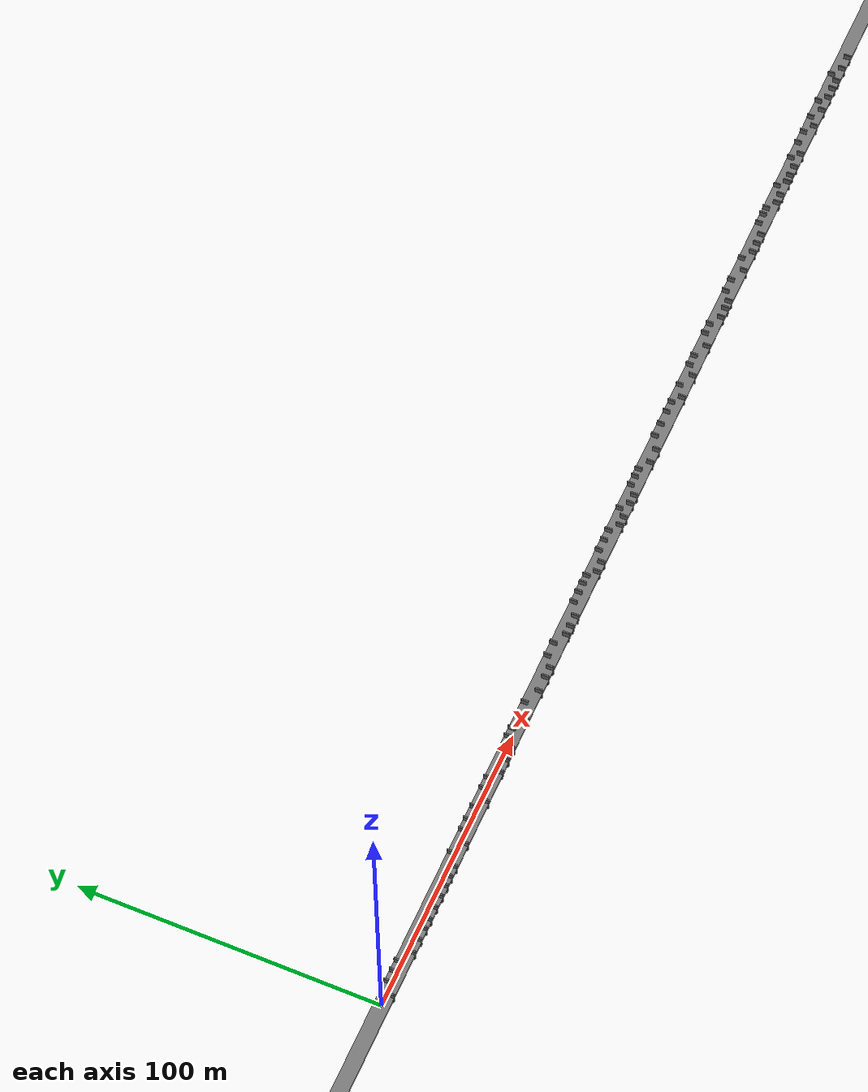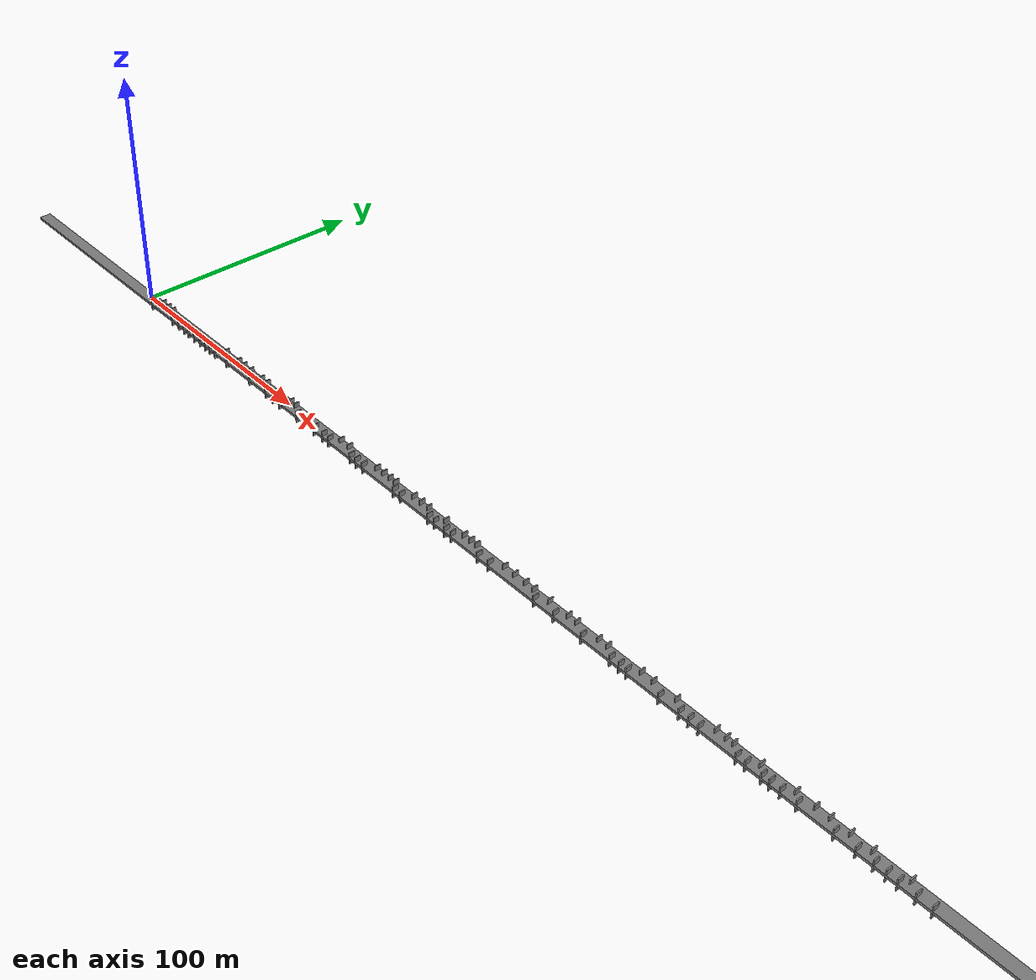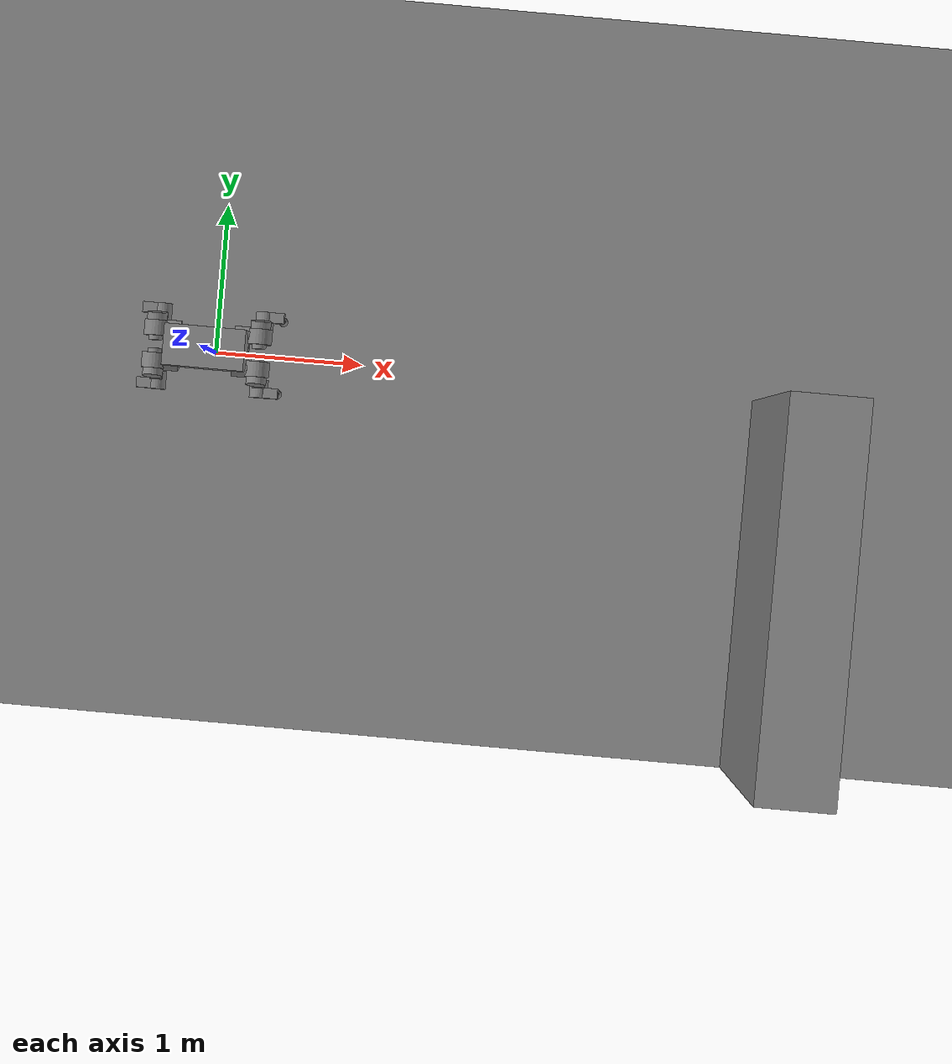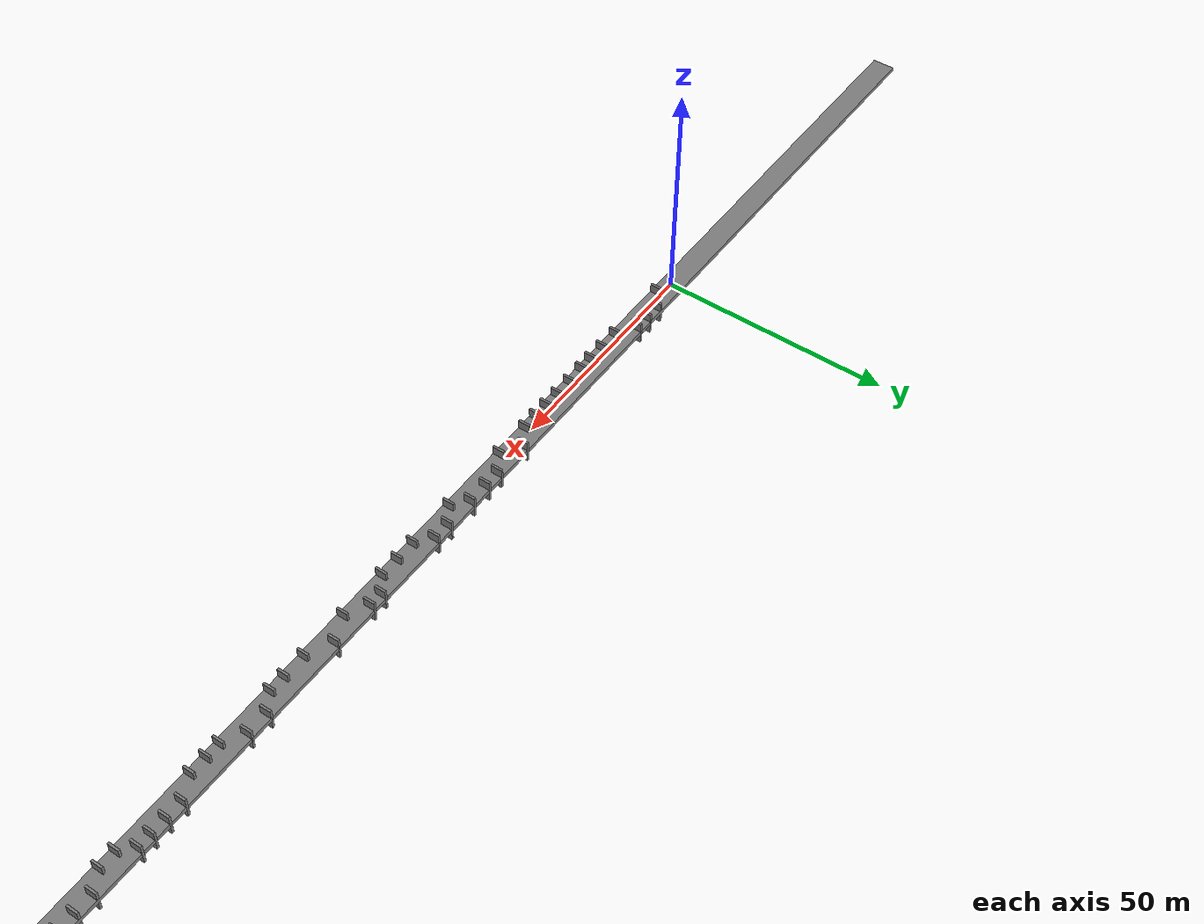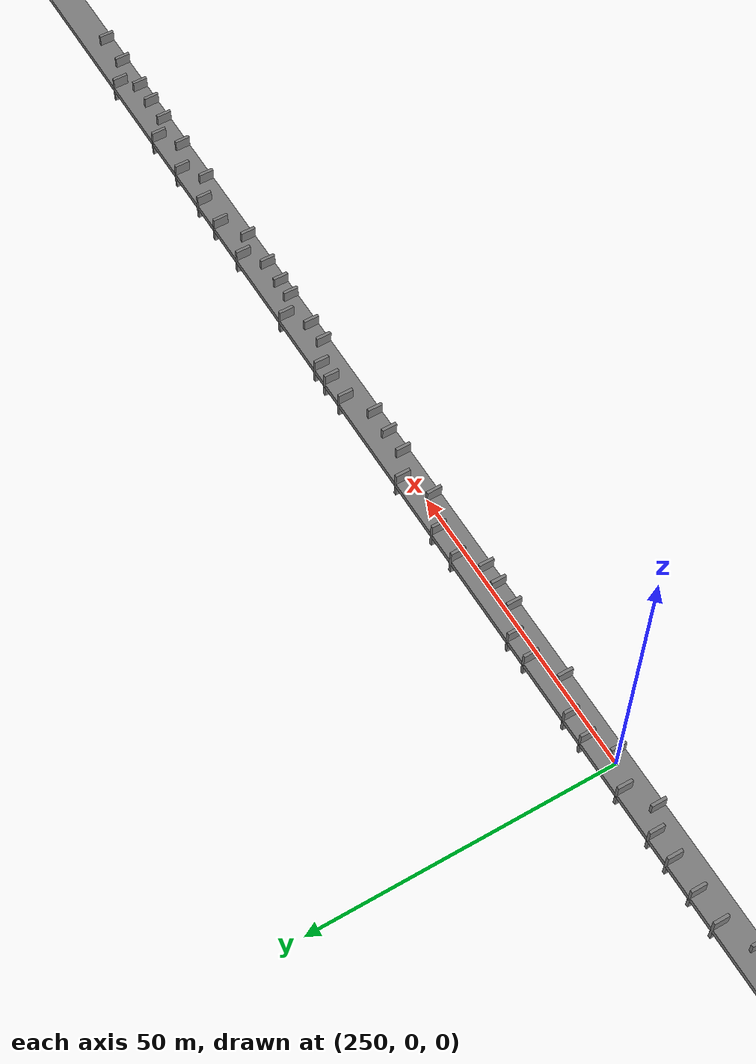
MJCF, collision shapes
<mujoco model="anymal_b scene">
    <include file="anymal_b.xml" />

    <statistic center="0 0 0.3" extent="1.2" />

    <visual>
        <headlight diffuse="0.6 0.6 0.6" ambient="0.3 0.3 0.3" specular="0 0 0" />
        <rgba haze="0.15 0.25 0.35 1" />
        <global azimuth="120" elevation="-20" />
    </visual>

    <asset>
        <texture type="skybox" builtin="gradient" rgb1="0.3 0.5 0.7" rgb2="0 0 0" width="512" height="3072" />
        <texture type="2d" name="groundplane" builtin="checker" mark="edge" rgb1="0.2 0.3 0.4" rgb2="0.1 0.2 0.3" markrgb="0.8 0.8 0.8" width="300" height="300" />
        <material name="groundplane" texture="groundplane" texuniform="true" texrepeat="5 5" reflectance="0.2" />
    </asset>

    <worldbody>
        <light pos="0 0 1.5" dir="0 0 -1" directional="true" />
    <geom pos="0.0 0.0 -0.5" type="box" size="500.0 2.5 0.5" quat="1.0 0.0 0.0 0.0" /><geom pos="3.9110247641491576 -1.25 -0.5" type="box" size="0.25 1.25 2.5" quat="1.0 0.0 0.0 0.0" /><geom pos="7.685265699835253 1.25 -0.5" type="box" size="0.25 1.25 2.5" quat="1.0 0.0 0.0 0.0" /><geom pos="11.502134607156323 1.25 -0.5" type="box" size="0.25 1.25 2.5" quat="1.0 0.0 0.0 0.0" /><geom pos="14.993684055237338 1.25 -0.5" type="box" size="0.25 1.25 2.5" quat="1.0 0.0 0.0 0.0" /><geom pos="19.30131525333377 -1.25 -0.5" type="box" size="0.25 1.25 2.5" quat="1.0 0.0 0.0 0.0" /><geom pos="24.00093528835626 -1.25 -0.5" type="box" size="0.25 1.25 2.5" quat="1.0 0.0 0.0 0.0" /><geom pos="28.03562002728883 -1.25 -0.5" type="box" size="0.25 1.25 2.5" quat="1.0 0.0 0.0 0.0" /><geom pos="31.379729867413023 -1.25 -0.5" type="box" size="0.25 1.25 2.5" quat="1.0 0.0 0.0 0.0" /><geom pos="35.64398155642223 -1.25 -0.5" type="box" size="0.25 1.25 2.5" quat="1.0 0.0 0.0 0.0" /><geom pos="39.88093298487227 -1.25 -0.5" type="box" size="0.25 1.25 2.5" quat="1.0 0.0 0.0 0.0" /><geom pos="43.602842666637116 -1.25 -0.5" type="box" size="0.25 1.25 2.5" quat="1.0 0.0 0.0 0.0" /><geom pos="47.07867683104669 -1.25 -0.5" type="box" size="0.25 1.25 2.5" quat="1.0 0.0 0.0 0.0" /><geom pos="50.739700672143314 -1.25 -0.5" type="box" size="0.25 1.25 2.5" quat="1.0 0.0 0.0 0.0" /><geom pos="54.6518807552733 1.25 -0.5" type="box" size="0.25 1.25 2.5" quat="1.0 0.0 0.0 0.0" /><geom pos="59.109981921754176 -1.25 -0.5" type="box" size="0.25 1.25 2.5" quat="1.0 0.0 0.0 0.0" /><geom pos="63.11358409259778 1.25 -0.5" type="box" size="0.25 1.25 2.5" quat="1.0 0.0 0.0 0.0" /><geom pos="67.02647333554597 1.25 -0.5" type="box" size="0.25 1.25 2.5" quat="1.0 0.0 0.0 0.0" /><geom pos="71.80889565249383 1.25 -0.5" type="box" size="0.25 1.25 2.5" quat="1.0 0.0 0.0 0.0" /><geom pos="75.14428829062302 -1.25 -0.5" type="box" size="0.25 1.25 2.5" quat="1.0 0.0 0.0 0.0" /><geom pos="78.94782911948836 1.25 -0.5" type="box" size="0.25 1.25 2.5" quat="1.0 0.0 0.0 0.0" /><geom pos="82.90707274735354 1.25 -0.5" type="box" size="0.25 1.25 2.5" quat="1.0 0.0 0.0 0.0" /><geom pos="86.29585221035396 -1.25 -0.5" type="box" size="0.25 1.25 2.5" quat="1.0 0.0 0.0 0.0" /><geom pos="90.9984488087719 -1.25 -0.5" type="box" size="0.25 1.25 2.5" quat="1.0 0.0 0.0 0.0" /><geom pos="95.55636173472006 -1.25 -0.5" type="box" size="0.25 1.25 2.5" quat="1.0 0.0 0.0 0.0" /><geom pos="98.9137607383902 1.25 -0.5" type="box" size="0.25 1.25 2.5" quat="1.0 0.0 0.0 0.0" /><geom pos="102.14443266491257 1.25 -0.5" type="box" size="0.25 1.25 2.5" quat="1.0 0.0 0.0 0.0" /><geom pos="106.80795533151826 -1.25 -0.5" type="box" size="0.25 1.25 2.5" quat="1.0 0.0 0.0 0.0" /><geom pos="112.32220416205632 1.25 -0.5" type="box" size="0.25 1.25 2.5" quat="1.0 0.0 0.0 0.0" /><geom pos="117.89485021611188 -1.25 -0.5" type="box" size="0.25 1.25 2.5" quat="1.0 0.0 0.0 0.0" /><geom pos="123.31458264316771 -1.25 -0.5" type="box" size="0.25 1.25 2.5" quat="1.0 0.0 0.0 0.0" /><geom pos="127.10783361135698 -1.25 -0.5" type="box" size="0.25 1.25 2.5" quat="1.0 0.0 0.0 0.0" /><geom pos="130.91818659162874 1.25 -0.5" type="box" size="0.25 1.25 2.5" quat="1.0 0.0 0.0 0.0" /><geom pos="136.07316010430438 1.25 -0.5" type="box" size="0.25 1.25 2.5" quat="1.0 0.0 0.0 0.0" /><geom pos="140.48825275602795 -1.25 -0.5" type="box" size="0.25 1.25 2.5" quat="1.0 0.0 0.0 0.0" /><geom pos="143.9431163201246 -1.25 -0.5" type="box" size="0.25 1.25 2.5" quat="1.0 0.0 0.0 0.0" /><geom pos="147.98503769297565 -1.25 -0.5" type="box" size="0.25 1.25 2.5" quat="1.0 0.0 0.0 0.0" /><geom pos="152.80813950873315 1.25 -0.5" type="box" size="0.25 1.25 2.5" quat="1.0 0.0 0.0 0.0" /><geom pos="156.87482484065075 1.25 -0.5" type="box" size="0.25 1.25 2.5" quat="1.0 0.0 0.0 0.0" /><geom pos="160.53957398578794 1.25 -0.5" type="box" size="0.25 1.25 2.5" quat="1.0 0.0 0.0 0.0" /><geom pos="163.71692550824397 1.25 -0.5" type="box" size="0.25 1.25 2.5" quat="1.0 0.0 0.0 0.0" /><geom pos="166.34326677703584 -1.25 -0.5" type="box" size="0.25 1.25 2.5" quat="1.0 0.0 0.0 0.0" /><geom pos="170.2832393176235 -1.25 -0.5" type="box" size="0.25 1.25 2.5" quat="1.0 0.0 0.0 0.0" /><geom pos="174.3144894998116 1.25 -0.5" type="box" size="0.25 1.25 2.5" quat="1.0 0.0 0.0 0.0" /><geom pos="178.6368096582222 1.25 -0.5" type="box" size="0.25 1.25 2.5" quat="1.0 0.0 0.0 0.0" /><geom pos="182.6634499936262 1.25 -0.5" type="box" size="0.25 1.25 2.5" quat="1.0 0.0 0.0 0.0" /><geom pos="186.00556707719198 -1.25 -0.5" type="box" size="0.25 1.25 2.5" quat="1.0 0.0 0.0 0.0" /><geom pos="189.4158295958911 -1.25 -0.5" type="box" size="0.25 1.25 2.5" quat="1.0 0.0 0.0 0.0" /><geom pos="192.1012639352307 1.25 -0.5" type="box" size="0.25 1.25 2.5" quat="1.0 0.0 0.0 0.0" /><geom pos="195.1898020538804 -1.25 -0.5" type="box" size="0.25 1.25 2.5" quat="1.0 0.0 0.0 0.0" /><geom pos="198.73942161061163 -1.25 -0.5" type="box" size="0.25 1.25 2.5" quat="1.0 0.0 0.0 0.0" /><geom pos="202.15317248830303 1.25 -0.5" type="box" size="0.25 1.25 2.5" quat="1.0 0.0 0.0 0.0" /><geom pos="205.83549478983656 1.25 -0.5" type="box" size="0.25 1.25 2.5" quat="1.0 0.0 0.0 0.0" /><geom pos="208.9462112937627 1.25 -0.5" type="box" size="0.25 1.25 2.5" quat="1.0 0.0 0.0 0.0" /><geom pos="212.96504721862854 -1.25 -0.5" type="box" size="0.25 1.25 2.5" quat="1.0 0.0 0.0 0.0" /><geom pos="218.4863847033406 -1.25 -0.5" type="box" size="0.25 1.25 2.5" quat="1.0 0.0 0.0 0.0" /><geom pos="223.59014576975116 1.25 -0.5" type="box" size="0.25 1.25 2.5" quat="1.0 0.0 0.0 0.0" /><geom pos="228.791633956785 1.25 -0.5" type="box" size="0.25 1.25 2.5" quat="1.0 0.0 0.0 0.0" /><geom pos="234.27188692716246 1.25 -0.5" type="box" size="0.25 1.25 2.5" quat="1.0 0.0 0.0 0.0" /><geom pos="238.5679521178942 1.25 -0.5" type="box" size="0.25 1.25 2.5" quat="1.0 0.0 0.0 0.0" /><geom pos="241.71127947613445 -1.25 -0.5" type="box" size="0.25 1.25 2.5" quat="1.0 0.0 0.0 0.0" /><geom pos="246.22011958668676 1.25 -0.5" type="box" size="0.25 1.25 2.5" quat="1.0 0.0 0.0 0.0" /><geom pos="251.47694229609306 -1.25 -0.5" type="box" size="0.25 1.25 2.5" quat="1.0 0.0 0.0 0.0" /><geom pos="255.35255977972898 1.25 -0.5" type="box" size="0.25 1.25 2.5" quat="1.0 0.0 0.0 0.0" /><geom pos="259.4728474955388 1.25 -0.5" type="box" size="0.25 1.25 2.5" quat="1.0 0.0 0.0 0.0" /><geom pos="264.82478872284497 -1.25 -0.5" type="box" size="0.25 1.25 2.5" quat="1.0 0.0 0.0 0.0" /><geom pos="269.82363647196 1.25 -0.5" type="box" size="0.25 1.25 2.5" quat="1.0 0.0 0.0 0.0" /><geom pos="274.00074229411985 1.25 -0.5" type="box" size="0.25 1.25 2.5" quat="1.0 0.0 0.0 0.0" /><geom pos="278.1475582595474 -1.25 -0.5" type="box" size="0.25 1.25 2.5" quat="1.0 0.0 0.0 0.0" /><geom pos="282.30341229556285 -1.25 -0.5" type="box" size="0.25 1.25 2.5" quat="1.0 0.0 0.0 0.0" /><geom pos="285.62131692357457 -1.25 -0.5" type="box" size="0.25 1.25 2.5" quat="1.0 0.0 0.0 0.0" /><geom pos="289.3439416869024 1.25 -0.5" type="box" size="0.25 1.25 2.5" quat="1.0 0.0 0.0 0.0" /><geom pos="294.6435716838024 1.25 -0.5" type="box" size="0.25 1.25 2.5" quat="1.0 0.0 0.0 0.0" /><geom pos="300.0306837984222 -1.25 -0.5" type="box" size="0.25 1.25 2.5" quat="1.0 0.0 0.0 0.0" /><geom pos="304.8634202240592 1.25 -0.5" type="box" size="0.25 1.25 2.5" quat="1.0 0.0 0.0 0.0" /><geom pos="308.85793123844235 -1.25 -0.5" type="box" size="0.25 1.25 2.5" quat="1.0 0.0 0.0 0.0" /><geom pos="312.92828849142154 -1.25 -0.5" type="box" size="0.25 1.25 2.5" quat="1.0 0.0 0.0 0.0" /><geom pos="317.13026119662163 -1.25 -0.5" type="box" size="0.25 1.25 2.5" quat="1.0 0.0 0.0 0.0" /><geom pos="321.67465624177186 1.25 -0.5" type="box" size="0.25 1.25 2.5" quat="1.0 0.0 0.0 0.0" /><geom pos="325.8830969167527 1.25 -0.5" type="box" size="0.25 1.25 2.5" quat="1.0 0.0 0.0 0.0" /><geom pos="328.9313182612806 1.25 -0.5" type="box" size="0.25 1.25 2.5" quat="1.0 0.0 0.0 0.0" /><geom pos="332.60006615868826 -1.25 -0.5" type="box" size="0.25 1.25 2.5" quat="1.0 0.0 0.0 0.0" /><geom pos="336.4103528759701 -1.25 -0.5" type="box" size="0.25 1.25 2.5" quat="1.0 0.0 0.0 0.0" /><geom pos="339.88695788422905 1.25 -0.5" type="box" size="0.25 1.25 2.5" quat="1.0 0.0 0.0 0.0" /><geom pos="342.8426317452512 -1.25 -0.5" type="box" size="0.25 1.25 2.5" quat="1.0 0.0 0.0 0.0" /><geom pos="346.0307443740762 -1.25 -0.5" type="box" size="0.25 1.25 2.5" quat="1.0 0.0 0.0 0.0" /><geom pos="350.2146961348724 -1.25 -0.5" type="box" size="0.25 1.25 2.5" quat="1.0 0.0 0.0 0.0" /><geom pos="353.70271080268515 1.25 -0.5" type="box" size="0.25 1.25 2.5" quat="1.0 0.0 0.0 0.0" /><geom pos="356.56626057029473 -1.25 -0.5" type="box" size="0.25 1.25 2.5" quat="1.0 0.0 0.0 0.0" /><geom pos="361.1683033828522 1.25 -0.5" type="box" size="0.25 1.25 2.5" quat="1.0 0.0 0.0 0.0" /><geom pos="366.62001607606913 1.25 -0.5" type="box" size="0.25 1.25 2.5" quat="1.0 0.0 0.0 0.0" /><geom pos="370.53012424596886 -1.25 -0.5" type="box" size="0.25 1.25 2.5" quat="1.0 0.0 0.0 0.0" /><geom pos="374.10753387982226 1.25 -0.5" type="box" size="0.25 1.25 2.5" quat="1.0 0.0 0.0 0.0" /><geom pos="378.6565121051003 -1.25 -0.5" type="box" size="0.25 1.25 2.5" quat="1.0 0.0 0.0 0.0" /><geom pos="382.2216353871314 1.25 -0.5" type="box" size="0.25 1.25 2.5" quat="1.0 0.0 0.0 0.0" /><geom pos="385.1128702345272 -1.25 -0.5" type="box" size="0.25 1.25 2.5" quat="1.0 0.0 0.0 0.0" /><geom pos="389.553131415295 -1.25 -0.5" type="box" size="0.25 1.25 2.5" quat="1.0 0.0 0.0 0.0" /><geom pos="393.59152475605896 -1.25 -0.5" type="box" size="0.25 1.25 2.5" quat="1.0 0.0 0.0 0.0" /><geom pos="395.91477096606786 1.25 -0.5" type="box" size="0.25 1.25 2.5" quat="1.0 0.0 0.0 0.0" /><geom pos="399.8984176289427 -1.25 -0.5" type="box" size="0.25 1.25 2.5" quat="1.0 0.0 0.0 0.0" /><geom pos="405.6906745890067 -1.25 -0.5" type="box" size="0.25 1.25 2.5" quat="1.0 0.0 0.0 0.0" /></worldbody>
</mujoco>

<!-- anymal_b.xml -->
<mujoco model="anymal_b">
  <compiler angle="radian" meshdir="assets" texturedir="assets" autolimits="true" />

  <option cone="elliptic" impratio="100" />

  <default>
    <default class="anymal_b">
      <mesh scale="0.001 0.001 0.001" />
      <site group="3" rgba="1 0 0 0.66" />
      <joint type="hinge" damping="1" frictionloss="0.1" />
      <default class="HAA">
        <joint axis="1 0 0" />
      </default>
      <default class="HFE">
        <joint axis="0 1 0" />
      </default>
      <default class="KFE">
        <joint axis="0 1 0" />
      </default>
      <geom mass="0" />
      <default class="visual">
        <geom type="mesh" contype="0" conaffinity="0" group="2" />
        <default class="visual_zflip">
          <geom quat="0 0 0 1" />
        </default>
      </default>
      <default class="collision">
        <geom group="3" />
        <default class="haa_actuator">
          <geom type="cylinder" size="0.05 0.05" euler="0 1.57079632679 0" />
        </default>
        <default class="belly_plate_bump">
          <geom type="box" size="0.05 0.05 0.035" />
        </default>
        <default class="mount">
          <geom type="box" size="0.01 0.135 0.045" />
        </default>
        <default class="protector">
          <geom type="cylinder" size="0.08 0.05" />
        </default>
        <default class="heatfins">
          <geom type="cylinder" size="0.045 0.015" />
        </default>
        <default class="thigh_with_fins">
          <geom type="box" size="0.04 0.02 0.125" />
        </default>
        <default class="kfe_actuator">
          <geom type="cylinder" size="0.06 0.06" />
        </default>
        <default class="upper_protector">
          <geom type="cylinder" size="0.066 0.06" />
        </default>
        <default class="shank">
          <geom type="box" size="0.04 0.034 0.065" euler="0 1.57079632679 0" />
        </default>
        <default class="adapter">
          <geom type="cylinder" size="0.015 0.14" pos="0 0 -0.14" />
        </default>
        <default class="foot">
          <geom type="sphere" size="0.031" pos="0 0 0.02325" priority="1" solimp="0.015 1 0.031"
            condim="6"
            friction="0.8 0.02 0.01" />
        </default>
      </default>
      <default class="affine">
        <position kp="100" ctrlrange="-6.28 6.28" forcerange="-40 40" />
      </default>
    </default>
  </default>

  <asset>
    <material name="light_gray" rgba="0.8 0.8 0.8 1" />
    <material name="dark_gray" rgba="0.64 0.64 0.64 1" />
    <material name="alu_eloxiert" rgba="0.1139 0.1139 0.1139 1" />
    <material name="any_blau" rgba="0.2399 0.3499 0.5899 1" />
    <texture name="base_uv_texture" type="2d" file="base_uv_texture.png" />
    <material name="carbon_fibre_logo" texture="base_uv_texture" specular="1" shininess="1" />
    <material name="rot_emcy" rgba="0.2611 0.09645 0.0735 1" />
    <material name="yellow_emcy" rgba="0.5987 0.4607 0.2442 1" />
    <material name="copper" rgba="0.8 0.4673 0.284 1" />
    <material name="foam_dark" rgba="0.1 0.1 0.1 1" />
    <texture name="carbon_uv_texture" type="2d" file="carbon_uv_texture.png" />
    <material name="carbon_fibre" texture="carbon_uv_texture" specular="1" shininess="1" />

    <mesh class="anymal_b" file="anymal_base_0.obj" />
    <mesh class="anymal_b" file="anymal_base_1.obj" />
    <mesh class="anymal_b" file="anymal_base_2.obj" />
    <mesh class="anymal_b" file="anymal_base_3.obj" />
    <mesh class="anymal_b" file="anymal_base_4.obj" />
    <mesh class="anymal_b" file="anymal_base_5.obj" />
    <mesh class="anymal_b" file="anymal_base_6.obj" />
    <mesh class="anymal_b" file="anymal_base_7.obj" />
    <mesh class="anymal_b" file="anymal_hip_l_0.obj" />
    <mesh class="anymal_b" file="anymal_hip_l_1.obj" />
    <mesh class="anymal_b" file="anymal_hip_l_2.obj" />
    <mesh class="anymal_b" file="anymal_hip_l_3.obj" />
    <mesh class="anymal_b" file="anymal_hip_l_4.obj" />
    <mesh class="anymal_b" file="anymal_hip_l_5.obj" />
    <mesh class="anymal_b" file="anymal_hip_l_6.obj" />
    <mesh class="anymal_b" file="anymal_thigh_l_0.obj" />
    <mesh class="anymal_b" file="anymal_thigh_l_1.obj" />
    <mesh class="anymal_b" file="anymal_thigh_l_2.obj" />
    <mesh class="anymal_b" file="anymal_thigh_l_3.obj" />
    <mesh class="anymal_b" file="anymal_thigh_l_4.obj" />
    <mesh class="anymal_b" file="anymal_thigh_l_5.obj" />
    <mesh class="anymal_b" file="anymal_shank_l_0.obj" />
    <mesh class="anymal_b" file="anymal_shank_l_1.obj" />
    <mesh class="anymal_b" file="anymal_shank_l_2.obj" />
    <mesh class="anymal_b" file="anymal_shank_l_3.obj" />
    <mesh class="anymal_b" file="anymal_hip_r_0.obj" />
    <mesh class="anymal_b" file="anymal_hip_r_1.obj" />
    <mesh class="anymal_b" file="anymal_hip_r_2.obj" />
    <mesh class="anymal_b" file="anymal_hip_r_3.obj" />
    <mesh class="anymal_b" file="anymal_hip_r_4.obj" />
    <mesh class="anymal_b" file="anymal_hip_r_5.obj" />
    <mesh class="anymal_b" file="anymal_hip_r_6.obj" />
    <mesh class="anymal_b" file="anymal_thigh_r_0.obj" />
    <mesh class="anymal_b" file="anymal_thigh_r_1.obj" />
    <mesh class="anymal_b" file="anymal_thigh_r_2.obj" />
    <mesh class="anymal_b" file="anymal_thigh_r_3.obj" />
    <mesh class="anymal_b" file="anymal_thigh_r_4.obj" />
    <mesh class="anymal_b" file="anymal_thigh_r_5.obj" />
    <mesh class="anymal_b" file="anymal_shank_r_0.obj" />
    <mesh class="anymal_b" file="anymal_shank_r_1.obj" />
    <mesh class="anymal_b" file="anymal_shank_r_2.obj" />
    <mesh class="anymal_b" file="anymal_shank_r_3.obj" />
    <mesh class="anymal_b" file="anymal_foot_0.obj" />
    <mesh class="anymal_b" file="anymal_foot_1.obj" />
    <mesh class="anymal_b" file="anymal_foot_2.obj" />
    <mesh class="anymal_b" file="anymal_foot_3.obj" />
  </asset>

  <worldbody>
    <light name="spotlight" mode="targetbodycom" target="base" pos="0 -1 2" cutoff="30" />
    <body name="base" pos="0 0 0.58" quat="1 0 0 0" childclass="anymal_b">
      <freejoint />
      <inertial mass="19.2035" pos="0.0025 0 0.0502071" quat="0.5 0.5 0.5 0.5"
        diaginertia="0.639559 0.624031 0.217374" />
      <geom class="visual" mesh="anymal_base_0" material="yellow_emcy" />
      <geom class="visual" mesh="anymal_base_1" material="rot_emcy" />
      <geom class="visual" mesh="anymal_base_2" material="dark_gray" />
      <geom class="visual" mesh="anymal_base_3" material="any_blau" />
      <geom class="visual" mesh="anymal_base_4" material="alu_eloxiert" />
      <geom class="visual" mesh="anymal_base_5" material="carbon_fibre_logo" />
      <geom class="visual" mesh="anymal_base_6" material="foam_dark" />
      <geom class="visual" mesh="anymal_base_7" material="light_gray" />
      <geom class="collision" size="0.2655 0.135 0.12" pos="0 0 0.08" type="box" />
      <geom class="haa_actuator" pos="0.227 0.116 0" />
      <geom class="haa_actuator" pos="0.227 -0.116 0" />
      <geom class="haa_actuator" pos="-0.227 0.116 0" />
      <geom class="haa_actuator" pos="-0.227 -0.116 0" />
      <geom class="belly_plate_bump" pos="0.2155 0 -0.09" />
      <geom class="belly_plate_bump" pos="-0.2155 0 -0.09" />
      <geom class="collision" size="0.2655 0.01 0.035" pos="0 0 -0.09" type="box" />
      <body name="LF_HIP" pos="0.277 0.116 0">
        <inertial mass="1.42462" pos="0.0645163 -0.0037871 -0.000152184"
          quat="0.996866 0.0379822 0.0252009 -0.0646548"
          diaginertia="0.00243341 0.00230249 0.00197758" />
        <joint name="LF_HAA" class="HAA" />
        <geom class="visual" mesh="anymal_hip_l_0" material="light_gray" />
        <geom class="visual" mesh="anymal_hip_l_1" material="copper" />
        <geom class="visual" mesh="anymal_hip_l_2" material="foam_dark" />
        <geom class="visual" mesh="anymal_hip_l_3" material="alu_eloxiert" />
        <geom class="visual" mesh="anymal_hip_l_4" material="any_blau" />
        <geom class="visual" mesh="anymal_hip_l_5" material="dark_gray" />
        <geom class="visual" mesh="anymal_hip_l_6" material="light_gray" />
        <geom class="protector" pos="0.0635 -0.009 0" quat="1 1 0 0" />
        <geom class="heatfins" pos="0.0635 -0.074 0" quat="1 1 0 0" />
        <body name="LF_THIGH" pos="0.0635 0.041 0">
          <inertial mass="1.63498" pos="-0.00389797 0.0542266 -0.214583"
            quat="0.74395 -0.0633414 0.0362707 0.664237"
            diaginertia="0.0122697 0.0120427 0.00228302" />
          <joint name="LF_HFE" class="HFE" />
          <geom class="visual" material="any_blau" mesh="anymal_thigh_l_0" />
          <geom class="visual" material="dark_gray" mesh="anymal_thigh_l_1" />
          <geom class="visual" material="copper" mesh="anymal_thigh_l_2" />
          <geom class="visual" material="alu_eloxiert" mesh="anymal_thigh_l_3" />
          <geom class="visual" material="foam_dark" mesh="anymal_thigh_l_4" />
          <geom class="visual" material="light_gray" mesh="anymal_thigh_l_5" />
          <geom class="thigh_with_fins" pos="0 0.035 -0.125" quat="0.997373 0.0724365 0 0" />
          <geom class="kfe_actuator" pos="0 0.069 -0.25" quat="1 1 0 0" />
          <geom class="upper_protector" pos="0 -0.005 0" quat="0.654029 0.75647 0 0" />
          <body name="LF_SHANK" pos="0 0.109 -0.25">
            <inertial mass="0.472163" pos="0.0696396 -0.0132494 -0.150905"
              quat="0.677954 -0.0950614 -0.0578104 0.726636"
              diaginertia="0.0116034 0.0110666 0.000723761" />
            <joint name="LF_KFE" class="KFE" />
            <geom class="visual" material="foam_dark" mesh="anymal_shank_l_0" />
            <geom class="visual" material="dark_gray" mesh="anymal_shank_l_1" />
            <geom class="visual" material="light_gray" mesh="anymal_shank_l_2" />
            <geom class="visual" material="light_gray" mesh="anymal_shank_l_3" />
            <geom class="shank" pos="0.065 -0.015 0.01" quat="1 0 1 0" />
            <geom class="visual" material="carbon_fibre" mesh="anymal_foot_0" pos="0.1 -0.02 0.032" />
            <geom class="visual" material="foam_dark" mesh="anymal_foot_1" pos="0.1 -0.02 0.032" />
            <geom class="visual" material="dark_gray" mesh="anymal_foot_2" pos="0.1 -0.02 0.032" />
            <geom class="visual" material="light_gray" mesh="anymal_foot_3" pos="0.1 -0.02 0.032" />
            <geom class="adapter" pos="0.1 -0.02 -0.160625" />
            <geom class="foot" pos="0.1 -0.02 -0.298" />
          </body>
        </body>
      </body>
      <body name="RF_HIP" pos="0.277 -0.116 0">
        <inertial mass="1.42462" pos="0.0645163 0.0037871 -0.000152184"
          quat="0.996866 -0.0379822 0.0252009 0.0646548"
          diaginertia="0.00243341 0.00230249 0.00197758" />
        <joint name="RF_HAA" class="HAA" />
        <geom class="visual" material="light_gray" mesh="anymal_hip_r_0" />
        <geom class="visual" material="copper" mesh="anymal_hip_r_1" />
        <geom class="visual" material="foam_dark" mesh="anymal_hip_r_2" />
        <geom class="visual" material="alu_eloxiert" mesh="anymal_hip_r_3" />
        <geom class="visual" material="any_blau" mesh="anymal_hip_r_4" />
        <geom class="visual" material="dark_gray" mesh="anymal_hip_r_5" />
        <geom class="visual" material="light_gray" mesh="anymal_hip_r_6" />
        <geom class="protector" pos="0.0635 0.009 0" quat="1 1 0 0" />
        <geom class="heatfins" pos="0.0635 0.074 0" quat="1 1 0 0" />
        <body name="RF_THIGH" pos="0.0635 -0.041 0">
          <inertial mass="1.63498" pos="-0.00389797 -0.0542266 -0.214583"
            quat="0.664237 0.0362707 -0.0633414 0.74395"
            diaginertia="0.0122697 0.0120427 0.00228302" />
          <joint name="RF_HFE" class="HFE" />
          <geom class="visual" material="any_blau" mesh="anymal_thigh_r_0" />
          <geom class="visual" material="dark_gray" mesh="anymal_thigh_r_1" />
          <geom class="visual" material="copper" mesh="anymal_thigh_r_2" />
          <geom class="visual" material="alu_eloxiert" mesh="anymal_thigh_r_3" />
          <geom class="visual" material="foam_dark" mesh="anymal_thigh_r_4" />
          <geom class="visual" material="light_gray" mesh="anymal_thigh_r_5" />
          <geom class="thigh_with_fins" pos="0 -0.035 -0.125" quat="0.997373 -0.0724365 0 0" />
          <geom class="kfe_actuator" pos="0 -0.069 -0.25" quat="1 1 0 0" />
          <geom class="upper_protector" pos="0 0.005 0" quat="0.654029 -0.75647 0 0" />
          <body name="RF_SHANK" pos="0 -0.109 -0.25">
            <inertial mass="0.472163" pos="0.0696396 0.0132494 -0.150905"
              quat="0.726636 -0.0578104 -0.0950614 0.677954"
              diaginertia="0.0116034 0.0110666 0.000723761" />
            <joint name="RF_KFE" class="KFE" />
            <geom class="visual" material="foam_dark" mesh="anymal_shank_r_0" />
            <geom class="visual" material="dark_gray" mesh="anymal_shank_r_1" />
            <geom class="visual" material="light_gray" mesh="anymal_shank_r_2" />
            <geom class="visual" material="light_gray" mesh="anymal_shank_r_3" />
            <geom class="shank" pos="0.065 0.015 0.01" quat="1 0 1 0" />
            <geom class="visual" material="carbon_fibre" mesh="anymal_foot_0" pos="0.1 0.02 0.032" />
            <geom class="visual" material="foam_dark" mesh="anymal_foot_1" pos="0.1 0.02 0.032" />
            <geom class="visual" material="dark_gray" mesh="anymal_foot_2" pos="0.1 0.02 0.032" />
            <geom class="visual" material="light_gray" mesh="anymal_foot_3" pos="0.1 0.02 0.032" />
            <geom class="adapter" pos="0.1 0.02 -0.160625" />
            <geom class="foot" pos="0.1 0.02 -0.298" />
          </body>
        </body>
      </body>
      <body name="LH_HIP" pos="-0.277 0.116 0">
        <inertial mass="1.42462" pos="-0.0645163 -0.0037871 -0.000152184"
          quat="0.996866 0.0379822 -0.0252009 0.0646548"
          diaginertia="0.00243341 0.00230249 0.00197758" />
        <joint name="LH_HAA" class="HAA" />
        <geom class="visual_zflip" material="light_gray" mesh="anymal_hip_r_0" />
        <geom class="visual_zflip" material="copper" mesh="anymal_hip_r_1" />
        <geom class="visual_zflip" material="foam_dark" mesh="anymal_hip_r_2" />
        <geom class="visual_zflip" material="alu_eloxiert" mesh="anymal_hip_r_3" />
        <geom class="visual_zflip" material="any_blau" mesh="anymal_hip_r_4" />
        <geom class="visual_zflip" material="dark_gray" mesh="anymal_hip_r_5" />
        <geom class="visual_zflip" material="light_gray" mesh="anymal_hip_r_6" />
        <geom class="protector" pos="-0.0635 -0.009 0" quat="1 -1 0 0" />
        <geom class="heatfins" pos="-0.0635 -0.074 0" quat="1 -1 0 0" />
        <body name="LH_THIGH" pos="-0.0635 0.041 0">
          <inertial mass="1.63498" pos="0.00389797 0.0542266 -0.214583"
            quat="0.664237 -0.0362707 0.0633414 0.74395"
            diaginertia="0.0122697 0.0120427 0.00228302" />
          <joint name="LH_HFE" class="HFE" />
          <geom class="visual_zflip" material="any_blau" mesh="anymal_thigh_r_0" />
          <geom class="visual_zflip" material="dark_gray" mesh="anymal_thigh_r_1" />
          <geom class="visual_zflip" material="copper" mesh="anymal_thigh_r_2" />
          <geom class="visual_zflip" material="alu_eloxiert" mesh="anymal_thigh_r_3" />
          <geom class="visual_zflip" material="foam_dark" mesh="anymal_thigh_r_4" />
          <geom class="visual_zflip" material="light_gray" mesh="anymal_thigh_r_5" />
          <geom class="thigh_with_fins" pos="0 0.035 -0.125" quat="0.997373 0.0724365 0 0" />
          <geom class="kfe_actuator" pos="0 0.069 -0.25" quat="1 1 0 0" />
          <geom class="upper_protector" pos="0 -0.005 0" quat="0.654029 0.75647 0 0" />
          <body name="LH_SHANK" pos="0 0.109 -0.25">
            <inertial mass="0.472163" pos="-0.0696396 -0.0132494 -0.150905"
              quat="0.726636 0.0578104 0.0950615 0.677954"
              diaginertia="0.0116034 0.0110666 0.000723761" />
            <joint name="LH_KFE" class="KFE" />
            <geom class="visual_zflip" material="foam_dark" mesh="anymal_shank_r_0" />
            <geom class="visual_zflip" material="dark_gray" mesh="anymal_shank_r_1" />
            <geom class="visual_zflip" material="light_gray" mesh="anymal_shank_r_2" />
            <geom class="visual_zflip" material="light_gray" mesh="anymal_shank_r_3" />
            <geom class="shank" pos="-0.065 -0.015 0.01" quat="1 0 1 0" />
            <geom class="visual_zflip" material="carbon_fibre" mesh="anymal_foot_0"
              pos="-0.1 -0.02 0.032" />
            <geom class="visual_zflip" material="foam_dark" mesh="anymal_foot_1"
              pos="-0.1 -0.02 0.032" />
            <geom class="visual_zflip" material="dark_gray" mesh="anymal_foot_2"
              pos="-0.1 -0.02 0.032" />
            <geom class="visual_zflip" material="light_gray" mesh="anymal_foot_3"
              pos="-0.1 -0.02 0.032" />
            <geom class="adapter" pos="-0.1 -0.02 -0.160625" />
            <geom class="foot" pos="-0.1 -0.02 -0.298" />
          </body>
        </body>
      </body>
      <body name="RH_HIP" pos="-0.277 -0.116 0">
        <inertial mass="1.42462" pos="-0.0645163 0.0037871 -0.000152184"
          quat="0.996866 -0.0379822 -0.0252009 -0.0646548"
          diaginertia="0.00243341 0.00230249 0.00197758" />
        <joint name="RH_HAA" class="HAA" />
        <geom class="visual_zflip" mesh="anymal_hip_l_0" material="light_gray" />
        <geom class="visual_zflip" mesh="anymal_hip_l_1" material="copper" />
        <geom class="visual_zflip" mesh="anymal_hip_l_2" material="foam_dark" />
        <geom class="visual_zflip" mesh="anymal_hip_l_3" material="alu_eloxiert" />
        <geom class="visual_zflip" mesh="anymal_hip_l_4" material="any_blau" />
        <geom class="visual_zflip" mesh="anymal_hip_l_5" material="dark_gray" />
        <geom class="visual_zflip" mesh="anymal_hip_l_6" material="light_gray" />
        <geom class="protector" pos="-0.0635 0.009 0" quat="1 -1 0 0" />
        <geom class="heatfins" pos="-0.0635 0.074 0" quat="1 -1 0 0" />
        <body name="RH_THIGH" pos="-0.0635 -0.041 0">
          <inertial mass="1.63498" pos="0.00389797 -0.0542266 -0.214583"
            quat="0.74395 0.0633414 -0.0362707 0.664237"
            diaginertia="0.0122697 0.0120427 0.00228302" />
          <joint name="RH_HFE" class="HFE" />
          <geom class="visual_zflip" material="any_blau" mesh="anymal_thigh_l_0" />
          <geom class="visual_zflip" material="dark_gray" mesh="anymal_thigh_l_1" />
          <geom class="visual_zflip" material="copper" mesh="anymal_thigh_l_2" />
          <geom class="visual_zflip" material="alu_eloxiert" mesh="anymal_thigh_l_3" />
          <geom class="visual_zflip" material="foam_dark" mesh="anymal_thigh_l_4" />
          <geom class="visual_zflip" material="light_gray" mesh="anymal_thigh_l_5" />
          <geom class="thigh_with_fins" pos="0 -0.035 -0.125" quat="0.997373 -0.0724365 0 0" />
          <geom class="kfe_actuator" pos="0 -0.069 -0.25" quat="1 1 0 0" />
          <geom class="upper_protector" pos="0 0.005 0" quat="0.654029 -0.75647 0 0" />
          <body name="RH_SHANK" pos="0 -0.109 -0.25">
            <inertial mass="0.472163" pos="-0.0696396 0.0132494 -0.150905"
              quat="0.677954 0.0950614 0.0578104 0.726636"
              diaginertia="0.0116034 0.0110666 0.000723761" />
            <joint name="RH_KFE" class="KFE" />
            <geom class="visual_zflip" material="foam_dark" mesh="anymal_shank_l_0" />
            <geom class="visual_zflip" material="dark_gray" mesh="anymal_shank_l_1" />
            <geom class="visual_zflip" material="light_gray" mesh="anymal_shank_l_2" />
            <geom class="visual_zflip" material="light_gray" mesh="anymal_shank_l_3" />
            <geom class="shank" pos="-0.065 0.015 0.01" quat="1 0 1 0" />
            <geom class="visual_zflip" material="carbon_fibre" mesh="anymal_foot_0"
              pos="-0.1 0.02 0.032" />
            <geom class="visual_zflip" material="foam_dark" mesh="anymal_foot_1"
              pos="-0.1 0.02 0.032" />
            <geom class="visual_zflip" material="dark_gray" mesh="anymal_foot_2"
              pos="-0.1 0.02 0.032" />
            <geom class="visual_zflip" material="light_gray" mesh="anymal_foot_3"
              pos="-0.1 0.02 0.032" />
            <geom class="adapter" pos="-0.1 0.02 -0.160625" />
            <geom class="foot" pos="-0.1 0.02 -0.298" />
          </body>
        </body>
      </body>
    </body>
  </worldbody>

  <contact>
    <exclude body1="base" body2="LF_THIGH" />
    <exclude body1="base" body2="RF_THIGH" />
    <exclude body1="base" body2="LH_THIGH" />
    <exclude body1="base" body2="RH_THIGH" />
  </contact>

  <actuator>
    <position class="affine" joint="LF_HAA" name="LF_HAA" />
    <position class="affine" joint="LF_HFE" name="LF_HFE" />
    <position class="affine" joint="LF_KFE" name="LF_KFE" />
    <position class="affine" joint="RF_HAA" name="RF_HAA" />
    <position class="affine" joint="RF_HFE" name="RF_HFE" />
    <position class="affine" joint="RF_KFE" name="RF_KFE" />
    <position class="affine" joint="LH_HAA" name="LH_HAA" />
    <position class="affine" joint="LH_HFE" name="LH_HFE" />
    <position class="affine" joint="LH_KFE" name="LH_KFE" />
    <position class="affine" joint="RH_HAA" name="RH_HAA" />
    <position class="affine" joint="RH_HFE" name="RH_HFE" />
    <position class="affine" joint="RH_KFE" name="RH_KFE" />
  </actuator>
</mujoco>
